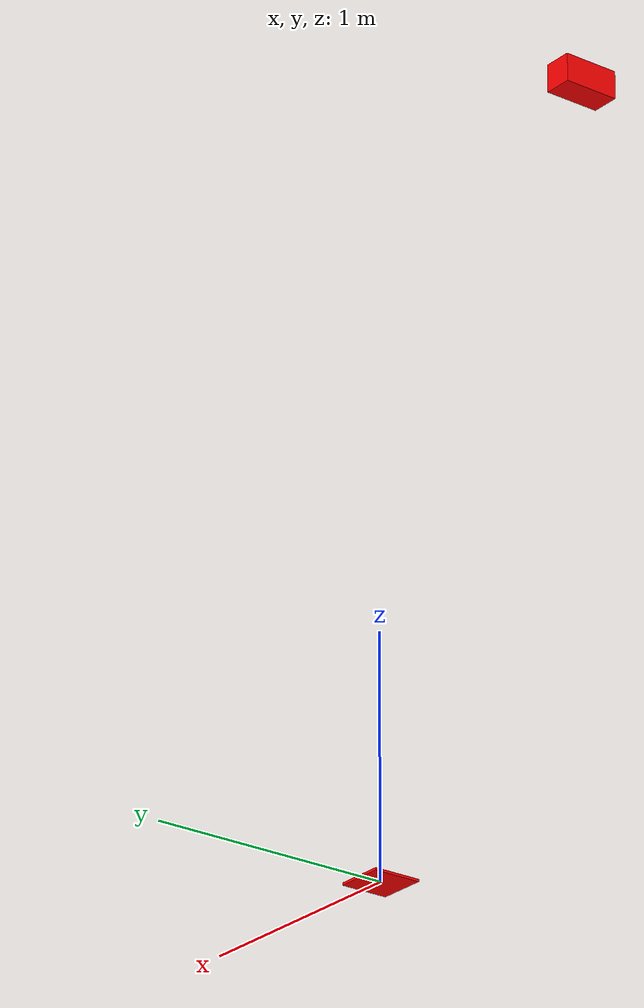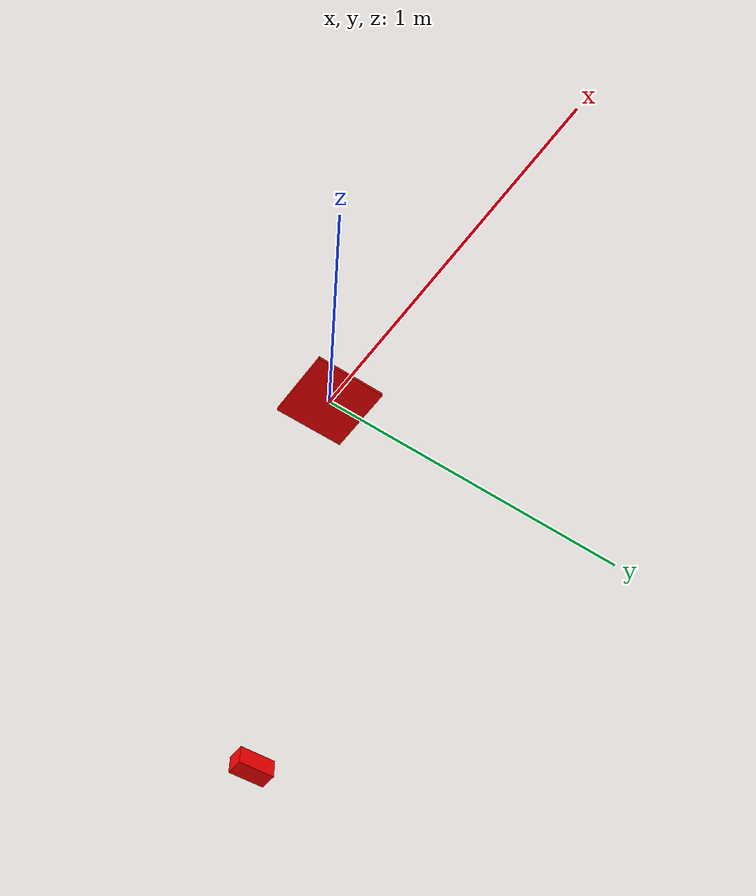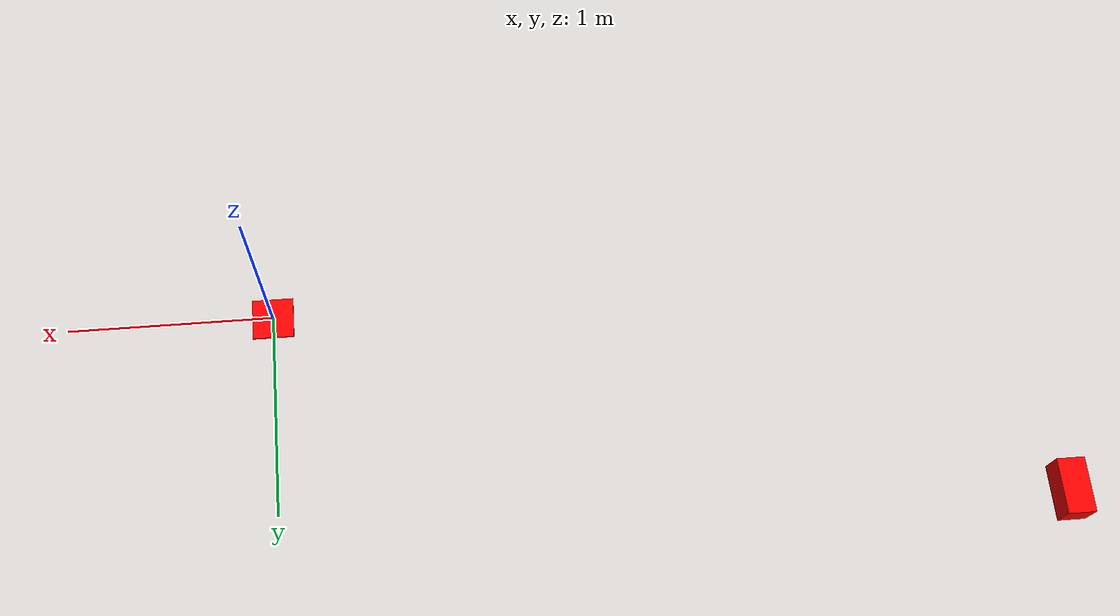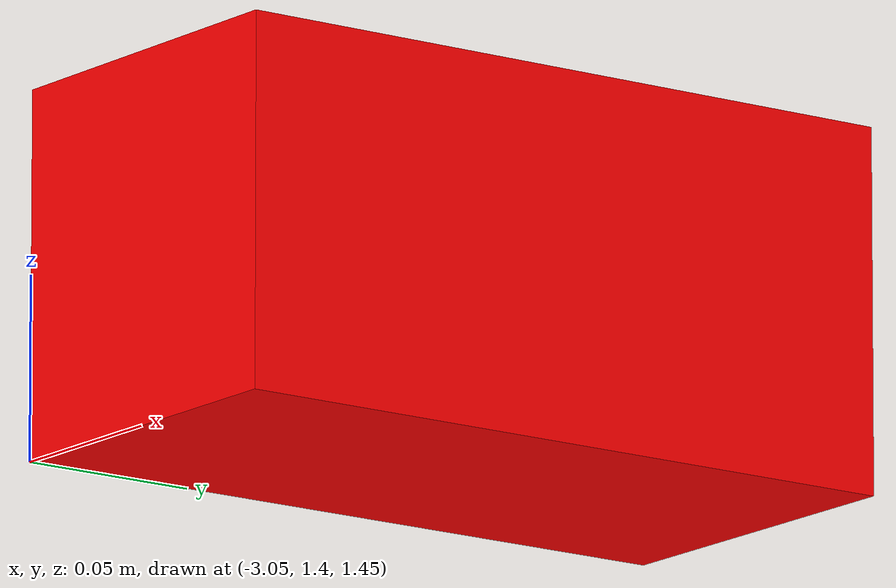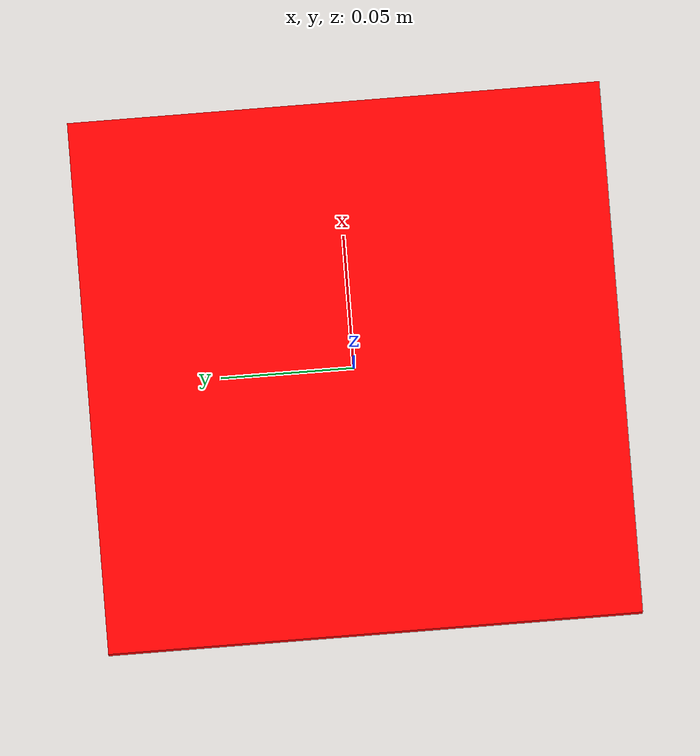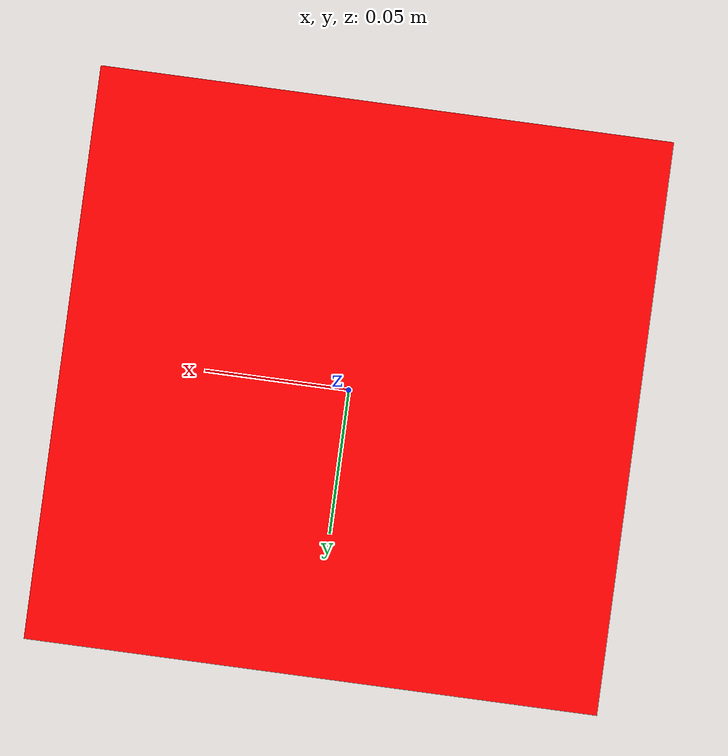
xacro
<?xml version="1.0"?>
<robot name="camera_robot">

  <link name="base_link">
    <inertial>
      <origin xyz="0.0 0.0 0.0" rpy="0.0 0.0 0.0"/>
      <mass value="200"/>
      <inertia ixx="200.0" ixy="0.0" ixz="0.0" iyy="200.0" iyz="0.0" izz="200.0"/>
    </inertial>
    <visual name="">
      <origin xyz="0.0 0.0 0.0" rpy="0.0 0.0 0.0"/>
      <geometry>
        <box size="0.2 0.2 0.01"/>
      </geometry>
      <material name="">
        <color rgba="1.0 0.0 0.0 1.0"/>
        <texture filename=""/>
      </material>
    </visual>
    <collision>
      <origin xyz="0.0 0.0 0.0" rpy="0.0 0.0 0.0"/>
      <geometry>
        <box size="0.2 0.2 0.01"/>
      </geometry>
    </collision>
  </link>

  <!--Camera-->

    <link name="camera">
    <inertial>
      <origin xyz="0.0 0.0 0.0" rpy="0.0 0.0 0.0"/>
      <mass value="0.1"/>
      <inertia ixx="0.1" ixy="0.0" ixz="0.0" iyy="0.1" iyz="0.0" izz="0.1"/>
    </inertial>
    <visual name="">
      <origin xyz="0.0 0.0 0.0" rpy="0.0 0.0 0.0"/>
      <geometry>
        <box size="0.1 0.1 0.2"/>
      </geometry>
      <material name="">
        <color rgba="1.0 0.0 0.0 1.0"/>
        <texture filename=""/>
      </material>
    </visual>
    <collision>
      <origin xyz="0.0 0.0 0.0" rpy="0.0 0.0 0.0"/>
      <geometry>
        <box size="0.1 0.1 0.2"/>
      </geometry>
    </collision>
  </link>

  <joint name="camera_joint" type="fixed">
    <origin xyz="-3 1.5 1.5" rpy="1.570796 1.570796 0"/>
    <parent link="base_link"/>
    <child link="camera"/>
  </joint>

  <gazebo reference="camera">
    <sensor type="camera" name="camera">
      <update_rate>10</update_rate>
      <camera name="head">
        <horizontal_fov>1.1</horizontal_fov>
        <image>
          <width>400</width>
          <height>300</height>
          <format>R8G8B8</format>
        </image>
        <clip>
          <near>0.02</near>
          <far>300</far>
        </clip>
        <noise>
          <type></type>
          <!-- Noise is sampled independently per pixel on each frame.
               That pixel's noise value is added to each of its color
               channels, which at that point lie in the range [0,1]. -->
          <mean>0.0</mean>
          <stddev>0.007</stddev>
        </noise>
      </camera>
      <plugin name="camera_controller" filename="libgazebo_ros_camera.so">
        <alwaysOn>true</alwaysOn>
        <updateRate>0.0</updateRate>
        <cameraName>/mybot/camera</cameraName>
        <imageTopicName>image_raw</imageTopicName>
        <cameraInfoTopicName>camera_info</cameraInfoTopicName>
        <frameName>camera</frameName>
        <hackBaseline>0.07</hackBaseline>
        <distortionK1>0.0</distortionK1>
        <distortionK2>0.0</distortionK2>
        <distortionK3>0.0</distortionK3>
        <distortionT1>0.0</distortionT1>
        <distortionT2>0.0</distortionT2>
      </plugin>
    </sensor>
  </gazebo>

</robot>
